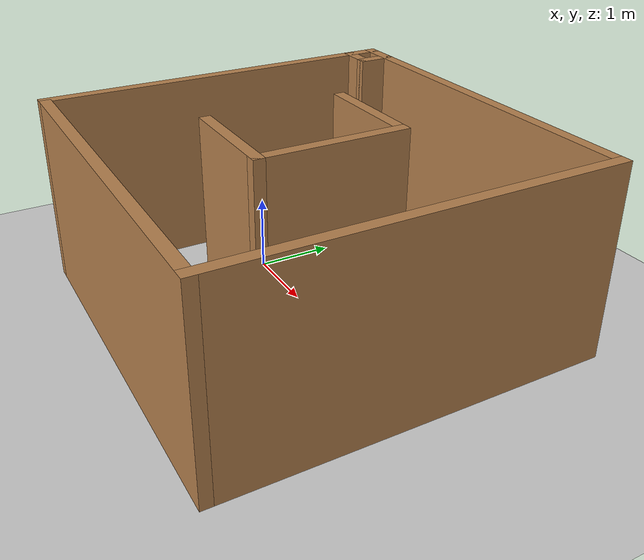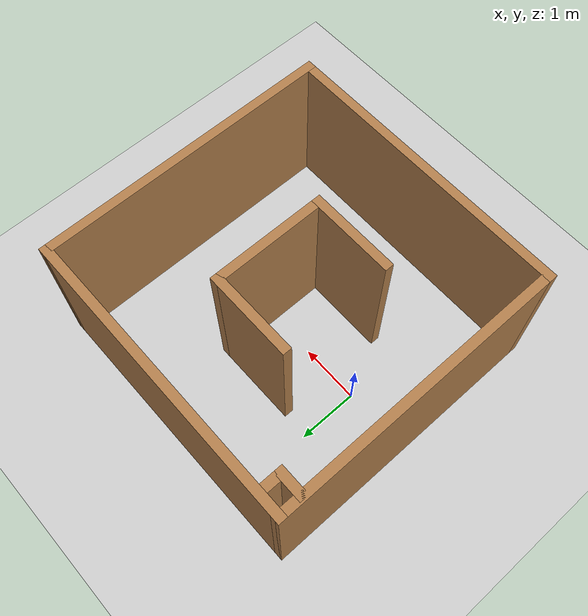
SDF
<sdf version="1.7">
 <world name="default">
  <light name="sun" type="directional">
   <pose>0 0 10 0 -0 0</pose>
   <diffuse>0.8 0.8 0.8 1</diffuse>
   <specular>0.2 0.2 0.2 1</specular>
   <attenuation>
    <range>1000</range>
    <constant>0.9</constant>
    <linear>0.01</linear>
    <quadratic>0.001</quadratic>
   </attenuation>
   <direction>-0.5 0.1 -0.9</direction>
   <spot><inner_angle>0</inner_angle><outer_angle>0</outer_angle><falloff>0</falloff></spot>
  </light>
  <model name="ground_plane">
   <static>1</static>
   <link name="link">
    <collision name="collision">
     <geometry><plane><normal>0 0 1</normal><size>100 100</size></plane></geometry>
     <surface><friction><ode><mu>100</mu><mu2>50</mu2></ode></friction></surface>
    </collision>
    <visual name="visual">
     <cast_shadows>0</cast_shadows>
     <geometry><plane><normal>0 0 1</normal><size>100 100</size></plane></geometry>
     <material>
      <script><uri>file://media/materials/scripts/gazebo.material</uri><name>Gazebo/Grey</name></script>
     </material>
    </visual>
   </link>
  </model>
  <gravity>0 0 -9.8</gravity>
  <magnetic_field>6e-06 2.3e-05 -4.2e-05</magnetic_field>
  <atmosphere type="adiabatic"/>
  <physics type="ode">
   <max_step_size>0.001</max_step_size>
   <real_time_factor>1</real_time_factor>
   <real_time_update_rate>1000</real_time_update_rate>
  </physics>
  <scene><ambient>0.4 0.4 0.4 1</ambient><background>0.7 0.7 0.7 1</background><shadows>1</shadows></scene>
  <audio><device>default</device></audio>
  <spherical_coordinates>
   <surface_model>EARTH_WGS84</surface_model>
   <latitude_deg>0</latitude_deg>
   <longitude_deg>0</longitude_deg>
   <elevation>0</elevation>
   <heading_deg>0</heading_deg>
  </spherical_coordinates>
  <model name="training_env_sink">
   <pose>1.34593 0.443309 0 0 -0 0</pose>
   <link name="Wall_0">
    <collision name="Wall_0_Collision">
     <geometry><box><size>5 0.15 2.5</size></box></geometry>
     <pose>0 0 1.25 0 -0 0</pose>
    </collision>
    <visual name="Wall_0_Visual">
     <pose>0 0 1.25 0 -0 0</pose>
     <geometry><box><size>5 0.15 2.5</size></box></geometry>
     <material>
      <script><uri>file://media/materials/scripts/gazebo.material</uri><name>Gazebo/Wood</name></script>
      <ambient>1 1 1 1</ambient>
     </material>
     <meta><layer>0</layer></meta>
    </visual>
    <pose>-0 1.9475 0 0 -0 0</pose>
   </link>
   <link name="Wall_2">
    <collision name="Wall_2_Collision">
     <geometry><box><size>5 0.15 2.5</size></box></geometry>
     <pose>0 0 1.25 0 -0 0</pose>
    </collision>
    <visual name="Wall_2_Visual">
     <pose>0 0 1.25 0 -0 0</pose>
     <geometry><box><size>5 0.15 2.5</size></box></geometry>
     <material>
      <script><uri>file://media/materials/scripts/gazebo.material</uri><name>Gazebo/Wood</name></script>
      <ambient>1 1 1 1</ambient>
     </material>
     <meta><layer>0</layer></meta>
    </visual>
    <pose>2.425 -0.4775 0 0 -0 -1.5708</pose>
   </link>
   <link name="Wall_3">
    <collision name="Wall_3_Collision">
     <geometry><box><size>5 0.15 2.5</size></box></geometry>
     <pose>0 0 1.25 0 -0 0</pose>
    </collision>
    <visual name="Wall_3_Visual">
     <pose>0 0 1.25 0 -0 0</pose>
     <geometry><box><size>5 0.15 2.5</size></box></geometry>
     <material>
      <script><uri>file://media/materials/scripts/gazebo.material</uri><name>Gazebo/Wood</name></script>
      <ambient>1 1 1 1</ambient>
     </material>
     <meta><layer>0</layer></meta>
    </visual>
    <pose>-0 -2.9025 0 0 -0 3.14159</pose>
   </link>
   <link name="Wall_4">
    <collision name="Wall_4_Collision">
     <geometry><box><size>5 0.15 2.5</size></box></geometry>
     <pose>0 0 1.25 0 -0 0</pose>
    </collision>
    <visual name="Wall_4_Visual">
     <pose>0 0 1.25 0 -0 0</pose>
     <geometry><box><size>5 0.15 2.5</size></box></geometry>
     <material>
      <script><uri>file://media/materials/scripts/gazebo.material</uri><name>Gazebo/Wood</name></script>
      <ambient>1 1 1 1</ambient>
     </material>
     <meta><layer>0</layer></meta>
    </visual>
    <pose>-2.425 -0.4775 0 0 -0 1.5708</pose>
   </link>
   <link name="Wall_58">
    <collision name="Wall_58_Collision">
     <geometry><box><size>2 0.15 2.5</size></box></geometry>
     <pose>0 0 1.25 0 -0 0</pose>
    </collision>
    <visual name="Wall_58_Visual">
     <pose>0 0 1.25 0 -0 0</pose>
     <geometry><box><size>2 0.15 2.5</size></box></geometry>
     <material>
      <script><uri>file://media/materials/scripts/gazebo.material</uri><name>Gazebo/Wood</name></script>
      <ambient>1 1 1 1</ambient>
     </material>
     <meta><layer>0</layer></meta>
    </visual>
    <pose>0.516883 -0.449473 0 0 -0 -1.5708</pose>
   </link>
   <link name="Wall_60">
    <collision name="Wall_60_Collision">
     <geometry><box><size>1.5 0.15 2.5</size></box></geometry>
     <pose>0 0 1.25 0 -0 0</pose>
    </collision>
    <visual name="Wall_60_Visual">
     <pose>0 0 1.25 0 -0 0</pose>
     <geometry><box><size>1.5 0.15 2.5</size></box></geometry>
     <material>
      <script><uri>file://media/materials/scripts/gazebo.material</uri><name>Gazebo/Wood</name></script>
      <ambient>1 1 1 1</ambient>
     </material>
     <meta><layer>0</layer></meta>
    </visual>
    <pose>-0.158117 0.475527 0 0 -0 3.14159</pose>
   </link>
   <link name="Wall_62">
    <collision name="Wall_62_Collision">
     <geometry><box><size>1.5 0.15 2.5</size></box></geometry>
     <pose>0 0 1.25 0 -0 0</pose>
    </collision>
    <visual name="Wall_62_Visual">
     <pose>0 0 1.25 0 -0 0</pose>
     <geometry><box><size>1.5 0.15 2.5</size></box></geometry>
     <material>
      <script><uri>file://media/materials/scripts/gazebo.material</uri><name>Gazebo/Wood</name></script>
      <ambient>1 1 1 1</ambient>
     </material>
     <meta><layer>0</layer></meta>
    </visual>
    <pose>-0.158117 -1.37447 0 0 -0 3.14159</pose>
   </link>
   <link name="Wall_8">
    <collision name="Wall_8_Collision">
     <geometry><box><size>0.5 0.15 2.5</size></box></geometry>
     <pose>0 0 1.25 0 -0 0</pose>
    </collision>
    <visual name="Wall_8_Visual">
     <pose>0 0 1.25 0 -0 0</pose>
     <geometry><box><size>0.5 0.15 2.5</size></box></geometry>
     <material>
      <script><uri>file://media/materials/scripts/gazebo.material</uri><name>Gazebo/Wood</name></script>
      <ambient>1 1 1 1</ambient>
     </material>
     <meta><layer>0</layer></meta>
    </visual>
    <pose>-2.22245 1.5795 0 0 -0 0</pose>
   </link>
   <link name="Wall_9">
    <collision name="Wall_9_Collision">
     <geometry><box><size>0.5 0.15 2.5</size></box></geometry>
     <pose>0 0 1.25 0 -0 0</pose>
    </collision>
    <visual name="Wall_9_Visual">
     <pose>0 0 1.25 0 -0 0</pose>
     <geometry><box><size>0.5 0.15 2.5</size></box></geometry>
     <material>
      <script><uri>file://media/materials/scripts/gazebo.material</uri><name>Gazebo/Wood</name></script>
      <ambient>1 1 1 1</ambient>
     </material>
     <meta><layer>0</layer></meta>
    </visual>
    <pose>-2.04745 1.7545 0 0 -0 1.5708</pose>
   </link>
   <static>1</static>
  </model>
 </world>
</sdf>
